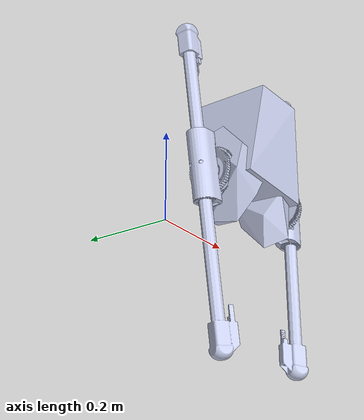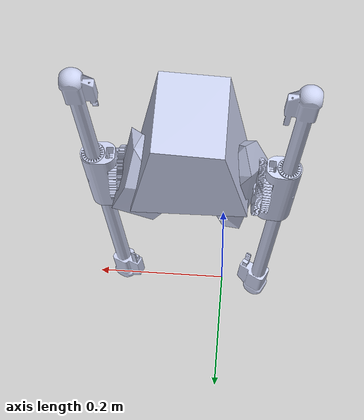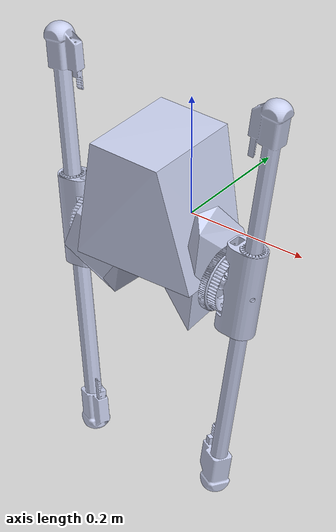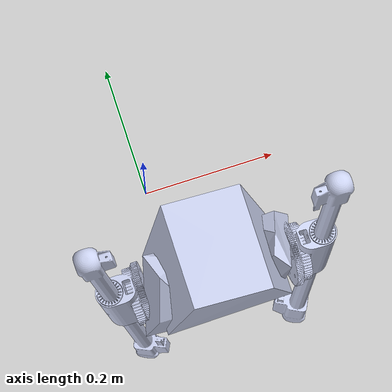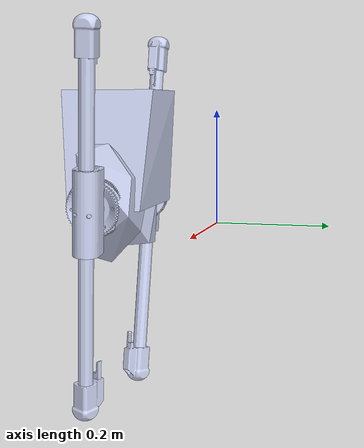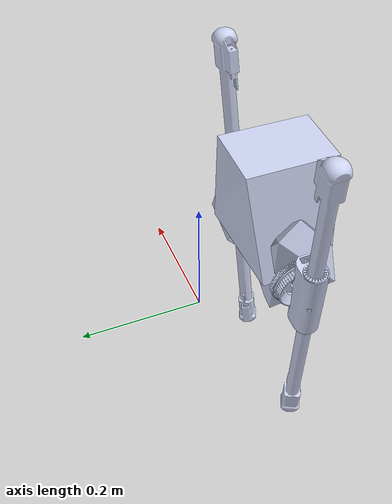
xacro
<?xml version="1.0" encoding="utf-8"?>
<robot
  name="walker" xmlns:xacro="http://www.ros.org/wiki/xacro">

  <!-- Import all Gazebo-customization elements, including Gazebo colors -->
  <xacro:include filename="$(find walker_description)/urdf/gazebo_specific.gazebo" />
  <!-- Import joint behavior parameters -->
  <xacro:include filename="$(find walker_description)/urdf/joint_descriptions.xacro" />
  <!-- Import sim behavior parameters -->
  <xacro:include filename="$(find walker_description)/urdf/sim_parameters.xacro" />
  <!-- Import transmission file-->
  <xacro:include filename="$(find walker_description)/urdf/transmissions.xacro" />

  <link
    name="base_link">
    <origin
      xyz="0 0 0"
      rpy="0 0 0"/>
  </link>
  <link
    name="body">
    <surface>
      <friction>
        <ode>
          <mu>"${ode_mu}"</mu>
        </ode>
      </friction>
      <contact>
        <ode>
          <max_vel>0</max_vel>
          <min_depth>"${ode_min_depth}"</min_depth>
          <kp>"${ode_kp}"</kp>
        </ode>
      </contact>
    </surface>
    <inertial>
      <origin
        xyz="0.06 -0.16 0.18"
        rpy="0 0 0" />
      <mass
        value="1.2001" />
      <inertia
        ixx="0.001773"
        ixy="5.1379E-08"
        ixz="-1.7115E-08"
        iyy="0.0013253"
        iyz="-1.7617E-05"
        izz="0.0020448" />
    </inertial>
    <visual>
      <origin
        xyz="0 0 0"
        rpy="0 0 0" />
      <geometry>
        <mesh
          filename="package://walker_description/meshes/visual/body.stl" />
      </geometry>
      <material
        name="">
        <color
          rgba="0.79216 0.81961 0.93333 1" />
      </material>
    </visual>
    <collision>
      <origin
        xyz="0 0 0"
        rpy="0 0 0" />
      <geometry>
        <mesh
          filename="package://walker_description/meshes/collision/body_collision.stl" />
      </geometry>
    </collision>
  </link>
  <joint
    name="floating_base_joint"
    type="fixed">
    <origin
      xyz="0 0 0"
      rpy="0 0 0" />
    <parent
      link="base_link" />
    <child
      link="body" />
  </joint>
  <link
    name="left_hip">
    <surface>
      <friction>
        <ode>
          <mu>"${ode_mu}"</mu>
        </ode>
      </friction>
      <contact>
        <ode>
          <min_depth>"${ode_min_depth}"</min_depth>
          <kp>"${ode_kp}"</kp>
        </ode>
      </contact>
    </surface>
    <inertial>
      <origin
        xyz="-0.083076 0.00066048 -0.037806"
        rpy="0 0 0" />
      <mass
        value="0.36941" />
      <inertia
        ixx="0.00036804"
        ixy="1.9388E-07"
        ixz="-3.6124E-05"
        iyy="0.00017982"
        iyz="-3.2417E-06"
        izz="0.00041443" />
    </inertial>
    <visual>
      <origin
        xyz="0 0 0"
        rpy="0 0 0" />
      <geometry>
        <mesh
          filename="package://walker_description/meshes/visual/left_hip.stl" />
      </geometry>
      <material
        name="">
        <color
          rgba="0.79216 0.81961 0.93333 1" />
      </material>
    </visual>
    <collision>
      <origin
        xyz="0 0 0"
        rpy="0 0 0" />
      <geometry>
        <mesh
          filename="package://walker_description/meshes/collision/left_hip_collision.stl" />
      </geometry>
    </collision>
  </link>
  <joint
    name="left_hip_joint"
    type="revolute">
    <origin
      xyz="0.14225 -0.062586 0.047447"
      rpy="-1.4815 0.057079 1.0742" />
    <parent
      link="body" />
    <child
      link="left_hip" />
    <axis
      xyz="0.87778 -0.0074863 0.479" />
    <dynamics
      damping="${hip_joint_damping}"
      friction="${hip_joint_friction}" />
    <limit
      lower="${hip_joint_negative_joint_limit}"
      upper="${hip_joint_positive_joint_limit}"
      effort="${hip_joint_max_effort}"
      velocity="${hip_joint_max_velocity}" />
  </joint>
  <link
    name="left_carriage">
    <surface>
      <friction>
        <ode>
          <mu>"${ode_mu}"</mu>
        </ode>
      </friction>
      <contact>
        <ode>
          <min_depth>"${ode_min_depth}"</min_depth>
          <kp>"${ode_kp}"</kp>
        </ode>
      </contact>
    </surface>
    <inertial>
      <origin
        xyz="0.025979 9.6971E-06 -0.047608"
        rpy="0 0 0" />
      <mass
        value="0.26282" />
      <inertia
        ixx="0.00028791"
        ixy="9.4318E-09"
        ixz="-2.3778E-05"
        iyy="0.00013775"
        iyz="3.1317E-09"
        izz="0.00031848" />
    </inertial>
    <visual>
      <origin
        xyz="0 0 0"
        rpy="0 0 0" />
      <geometry>
        <mesh
          filename="package://walker_description/meshes/visual/left_carriage.stl" />
      </geometry>
      <material
        name="">
        <color
          rgba="0.79216 0.81961 0.93333 1" />
      </material>
    </visual>
    <collision>
      <origin
        xyz="0 0 0"
        rpy="0 0 0" />
      <geometry>
        <mesh
          filename="package://walker_description/meshes/collision/carriage_collision.stl" />
      </geometry>
    </collision>
  </link>
  <joint
    name="left_carriage_joint"
    type="continuous">
    <origin
      xyz="-0.08921 0.00076084 -0.048681"
      rpy="0.048821 0.99788 -3.052" />
    <parent
      link="left_hip" />
    <child
      link="left_carriage" />
    <axis
      xyz="0.47901 0 -0.87781" />
    <dynamics
      damping="${carriage_joint_damping}"
      friction="${carriage_joint_friction}" />
    <limit
      effort="${carriage_joint_max_effort}"
      velocity="${carriage_joint_max_velocity}" />
  </joint>
  <link
    name="left_leg">
    <surface>
      <friction>
        <ode>
          <mu>"${ode_mu}"</mu>
        </ode>
      </friction>
      <contact>
        <ode>
          <min_depth>"${ode_min_depth}"</min_depth>
          <kp>"${ode_kp}"</kp>
        </ode>
      </contact>
    </surface>
    <inertial>
      <origin
        xyz="-0.0028732 -0.024853 0.0017328"
        rpy="0 0 0" />
      <mass
        value="0.18914" />
      <inertia
        ixx="0.0023785"
        ixy="7.43E-07"
        ixz="3.8842E-06"
        iyy="3.9163E-05"
        iyz="1.2321E-06"
        izz="0.0023826" />
    </inertial>
    <visual>
      <origin
        xyz="0 0 0"
        rpy="0 0 0" />
      <geometry>
        <mesh
          filename="package://walker_description/meshes/visual/left_leg.stl" />
      </geometry>
      <material
        name="">
        <color
          rgba="0.79216 0.81961 0.93333 1" />
      </material>
    </visual>
    <collision>
      <origin
        xyz="0 0 0"
        rpy="0 0 0" />
      <geometry>
        <mesh
          filename="package://walker_description/meshes/collision/leg_collision.stl" />
      </geometry>
    </collision>
  </link>
  <joint
    name="left_leg_joint"
    type="prismatic">
    <origin
      xyz="0.036657 0 -0.067174"
      rpy="0 0.30039 0" />
    <parent
      link="left_carriage" />
    <child
      link="left_leg" />
    <axis
      xyz="0 1 0" />
    <dynamics
      damping="${leg_joint_damping}"
      friction="${leg_joint_friction}" />
    <limit
      lower="${leg_joint_negative_joint_limit}"
      upper="${leg_joint_positive_joint_limit}"
      effort="${leg_joint_max_effort}"
      velocity="${leg_joint_max_velocity}" />
  </joint>
  <link
    name="right_hip">
    <surface>
      <friction>
        <ode>
          <mu>"${ode_mu}"</mu>
        </ode>
      </friction>
      <contact>
        <ode>
          <min_depth>"${ode_min_depth}"</min_depth>
          <kp>"${ode_kp}"</kp>
        </ode>
      </contact>
    </surface>
    <inertial>
      <origin
        xyz="0.07 0 0.03"
        rpy="0 0 0" />
      <mass
        value="0.36941" />
      <inertia
        ixx="0.001773"
        ixy="5.1379E-08"
        ixz="-1.7115E-08"
        iyy="0.0013253"
        iyz="-1.7617E-05"
        izz="0.0020448" />
    </inertial>
    <visual>
      <origin
        xyz="0 0 0"
        rpy="0 0 0" />
      <geometry>
        <mesh
          filename="package://walker_description/meshes/visual/right_hip.stl" />
      </geometry>
      <material
        name="">
        <color
          rgba="0.79216 0.81961 0.93333 1" />
      </material>
    </visual>
    <collision>
      <origin
        xyz="0 0 0"
        rpy="0 0 0" />
      <geometry>
        <mesh
          filename="package://walker_description/meshes/collision/right_hip_collision.stl" />
      </geometry>
    </collision>
  </link>
  <joint
    name="right_hip_joint"
    type="revolute">
    <origin
      xyz="-0.017748 -0.078624 0.047447"
      rpy="-1.4756 0.0603 -2.067" />
    <parent
      link="body" />
    <child
      link="right_hip" />
    <axis
      xyz="0.87778 -0.0074863 0.479" />
    <dynamics
      damping="${hip_joint_damping}"
      friction="${hip_joint_friction}" />
    <limit
      lower="${hip_joint_negative_joint_limit}"
      upper="${hip_joint_positive_joint_limit}"
      effort="${hip_joint_max_effort}"
      velocity="${hip_joint_max_velocity}" />
  </joint>
  <link
    name="right_carriage">
    <surface>
      <friction>
        <ode>
          <mu>"${ode_mu}"</mu>
        </ode>
      </friction>
      <contact>
        <ode>
          <min_depth>"${ode_min_depth}"</min_depth>
          <kp>"${ode_kp}"</kp>
        </ode>
      </contact>
    </surface>
    <inertial>
      <origin
        xyz="0.025979 9.6969E-06 -0.047608"
        rpy="0 0 0" />
      <mass
        value="0.26282" />
      <inertia
        ixx="0.00028791"
        ixy="9.4323E-09"
        ixz="-2.3778E-05"
        iyy="0.00013775"
        iyz="3.1329E-09"
        izz="0.00031848" />
    </inertial>
    <visual>
      <origin
        xyz="0 0 0"
        rpy="0 0 0" />
      <geometry>
        <mesh
          filename="package://walker_description/meshes/visual/right_carriage.stl" />
      </geometry>
      <material
        name="">
        <color
          rgba="0.79216 0.81961 0.93333 1" />
      </material>
    </visual>
    <collision>
      <origin
        xyz="0 0 0"
        rpy="0 0 0" />
      <geometry>
        <mesh
          filename="package://walker_description/meshes/collision/carriage_collision.stl" />
      </geometry>
    </collision>
  </link>
  <joint
    name="right_carriage_joint"
    type="continuous">
    <origin
      xyz="0.066354 -0.00056591 0.036209"
      rpy="-0.04304 0.99814 3.0627" />
    <parent
      link="right_hip" />
    <child
      link="right_carriage" />
    <axis
      xyz="0.47901 0 -0.87781" />
    <dynamics
      damping="${carriage_joint_damping}"
      friction="${carriage_joint_friction}" />
    <limit
      effort="${carriage_joint_max_effort}"
      velocity="${carriage_joint_max_velocity}" />
  </joint>
  <link
    name="right_leg">
    <surface>
      <friction>
        <ode>
          <mu>"${ode_mu}"</mu>
        </ode>
      </friction>
      <contact>
        <ode>
          <min_depth>"${ode_min_depth}"</min_depth>
          <kp>"${ode_kp}"</kp>
        </ode>
      </contact>
    </surface>
    <inertial>
      <origin
        xyz="-0.0028732 -0.029674 0.0017328"
        rpy="0 0 0" />
      <mass
        value="0.18914" />
      <inertia
        ixx="0.0023785"
        ixy="7.4298E-07"
        ixz="3.8842E-06"
        iyy="3.9163E-05"
        iyz="1.2321E-06"
        izz="0.0023826" />
    </inertial>
    <visual>
      <origin
        xyz="0 0 0"
        rpy="0 0 0" />
      <geometry>
        <mesh
          filename="package://walker_description/meshes/visual/right_leg.stl" />
      </geometry>
      <material
        name="">
        <color
          rgba="0.79216 0.81961 0.93333 1" />
      </material>
    </visual>
    <collision>
      <origin
        xyz="0 0 0"
        rpy="0 0 0" />
      <geometry>
        <mesh
          filename="package://walker_description/meshes/collision/leg_collision.stl" />
      </geometry>
    </collision>
  </link>
  <joint
    name="right_leg_joint"
    type="prismatic">
    <origin
      xyz="0.036657 0 -0.067174"
      rpy="0 0.30039 0" />
    <parent
      link="right_carriage" />
    <child
      link="right_leg" />
    <axis
      xyz="0 1 0" />
    <dynamics
      damping="${leg_joint_damping}"
      friction="${leg_joint_friction}" />
    <limit
      lower="${leg_joint_negative_joint_limit}"
      upper="${leg_joint_positive_joint_limit}"
      effort="${leg_joint_max_effort}"
      velocity="${leg_joint_max_velocity}" />
  </joint>

</robot>

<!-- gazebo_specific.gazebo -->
<robot>

  <!-- ros_control plugin -->
  <gazebo>
    <plugin name="gazebo_ros_control" filename="libgazebo_ros_control.so">
       <robotNamespace>/walker</robotNamespace>
       <robotSimType>gazebo_ros_control/DefaultRobotHWSim</robotSimType>
    </plugin>
  </gazebo>

  <gazebo reference="body">
    <material>Gazebo/Orange</material>
  </gazebo>

  <gazebo reference="right_hip">
    <mu1>0.2</mu1>
    <mu2>0.2</mu2>
    <material>Gazebo/Blue</material>
  </gazebo>

  <gazebo reference="left_hip">
    <mu1>0.2</mu1>
    <mu2>0.2</mu2>
    <material>Gazebo/Blue</material>
  </gazebo>

  <gazebo reference="right_carriage">
    <mu1>0.2</mu1>
    <mu2>0.2</mu2>
    <material>Gazebo/Blue</material>
  </gazebo>

  <gazebo reference="left_carriage">
    <mu1>0.2</mu1>
    <mu2>0.2</mu2>
    <material>Gazebo/Blue</material>
  </gazebo>

  <gazebo reference="right_leg">
    <mu1>0.2</mu1>
    <mu2>0.2</mu2>
    <material>Gazebo/Orange</material>
  </gazebo>

  <gazebo reference="left_leg">
    <mu1>0.2</mu1>
    <mu2>0.2</mu2>
    <material>Gazebo/Orange</material>
  </gazebo>

  <!-- Import Rviz colors -->
  <material name="black">
    <color rgba="0.0 0.0 0.0 1.0"/>
  </material>
  <material name="blue">
    <color rgba="0.0 0.0 0.8 1.0"/>
  </material>
  <material name="green">
    <color rgba="0.0 0.8 0.0 1.0"/>
  </material>
  <material name="grey">
    <color rgba="0.2 0.2 0.2 1.0"/>
  </material>
  <material name="orange">
    <color rgba="1.0 0.423529411765 0.0392156862745 1.0"/>
  </material>
  <material name="brown">
    <color rgba="0.870588235294 0.811764705882 0.764705882353 1.0"/>
  </material>
  <material name="red">
    <color rgba="0.8 0.0 0.0 1.0"/>
  </material>
  <material name="white">
    <color rgba="1.0 1.0 1.0 1.0"/>
  </material>
</robot>

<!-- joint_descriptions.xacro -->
<robot xmlns:xacro="http://ros.org/wiki/xacro" >

  <!-- Constants for robot behavior -->
  <!-- when applicable, right is positive and left is negative.
        these are defined w.r.t the right leg -->

  <!-- JOINTS -->

  <!-- hip joint -->
  <xacro:property name="hip_joint_damping" value="0.05"/>     <!-- Nm/(rad/s) -->
  <xacro:property name="hip_joint_friction" value="0.2"/>     <!-- Nm -->
  <xacro:property name="hip_joint_max_velocity" value="10"/>  <!-- rad/s -->
  <xacro:property name="hip_joint_max_effort" value="40"/>    <!-- Nm -->
  <xacro:property name="hip_joint_positive_joint_limit" value="1"/>   <!-- rad -->
  <xacro:property name="hip_joint_negative_joint_limit" value="-1"/>  <!-- rad -->

    <!-- carriage joint -->
  <xacro:property name="carriage_joint_damping" value="0.05"/>     <!-- Nm/(rad/s) -->
  <xacro:property name="carriage_joint_friction" value="0.2"/>     <!-- Nm -->
  <xacro:property name="carriage_joint_max_velocity" value="10"/>  <!-- rad/s -->
  <xacro:property name="carriage_joint_max_effort" value="40"/>    <!-- Nm -->
  <!-- carriage joint is continuous, so no position joint limits -->

  <!-- leg joint -->
  <xacro:property name="leg_joint_damping" value="0.05"/>
  <xacro:property name="leg_joint_friction" value="0.2"/>
  <xacro:property name="leg_joint_max_velocity" value="10"/>
  <xacro:property name="leg_joint_max_effort" value="100"/>
  <xacro:property name="leg_joint_positive_joint_limit" value="0.2"/>
  <xacro:property name="leg_joint_negative_joint_limit" value="-0.15"/>

  <!-- BODIES -->

  <!-- body -->
  <xacro:property name="body_static_friction_coeff" value="0.6"/>     <!-- unitless -->
  <xacro:property name="body_kinetic_friction_coeff" value="0.4"/>    <!-- unitless -->

  <!-- hip -->
  <xacro:property name="hip_static_friction_coeff" value="0.6"/>      <!-- unitless -->
  <xacro:property name="hip_kinetic_friction_coeff" value="0.4"/>     <!-- unitless -->

  <!-- carriage -->
  <xacro:property name="carriage_static_friction_coeff" value="0.6"/>     <!-- unitless -->
  <xacro:property name="carriage_kinetic_friction_coeff" value="0.4"/>    <!-- unitless -->

  <!-- leg -->
  <xacro:property name="leg_static_friction_coeff" value="0.6"/>      <!-- unitless -->
  <xacro:property name="leg_kinetic_friction_coeff" value="0.4"/>     <!-- unitless -->

  <!-- REDUCTIONS -->
  <xacro:property name="hip_reduction" value="1"/>        <!-- unitless -->
  <xacro:property name="carriage_reduction" value="1"/>   <!-- unitless -->
  <xacro:property name="leg_reduction" value="1"/>        <!-- unitless -->
</robot>
